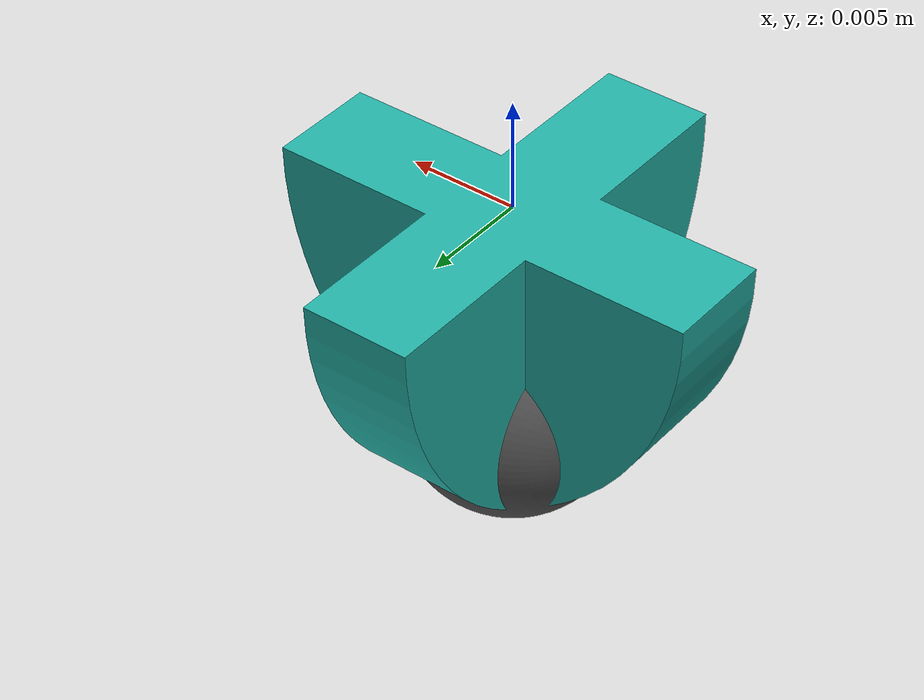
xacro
<?xml version="1.0" ?>
<robot xmlns:xacro="http://www.ros.org/wiki/xacro">

    <xacro:property name="caster_wheel_m" value="0.00740259" />
    <xacro:property name="caster_wheel_d" value="0.01863116" />
    <xacro:property name="caster_wheel_r" value="${caster_wheel_d / 2}" />
    <xacro:property name="caster_wheel_o_xyz" value="0 0 -${caster_wheel_r}" />
    <xacro:property name="caster_wheel_o_rpy" value="0 0 0" />

    <!-- Link caster_wheel -->
    <link name="caster_wheel">

        <xacro:sphere_inertia m="${caster_wheel_m}" r="${caster_wheel_r}" o_xyz="${caster_wheel_o_xyz}" o_rpy="${caster_wheel_o_rpy}"/>

        <collision>
            <origin xyz="${caster_wheel_o_xyz}" rpy="${caster_wheel_o_rpy}"/>
            <geometry>
                <sphere radius="${caster_wheel_r}" />
            </geometry>
        </collision>

        <!-- Part caster_ball -->
        <visual>
        <origin xyz="0 0 0" rpy="0 0 0"/>
        <geometry>
            <mesh filename="package://gizmo_description/meshes/caster_ball.stl"/>
        </geometry>
        <material name="caster_ball_material">
            <color rgba="0.301961 0.301961 0.301961 1"/>
        </material>
        </visual>

        <!-- Part caster_frame -->
        <visual>
        <origin xyz="0 0 0" rpy="0 0 0"/>
        <geometry>
            <mesh filename="package://gizmo_description/meshes/caster_frame.stl"/>
        </geometry>
        <material name="caster_frame_material">
            <color rgba="0.141176 0.694118 0.65098 1"/>
        </material>
        </visual>

    </link>

</robot>
